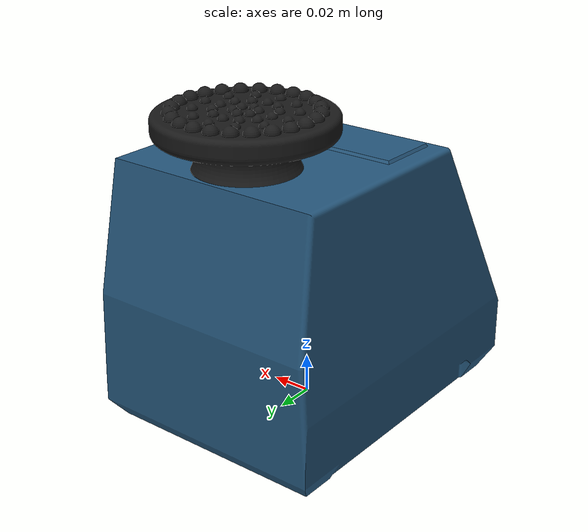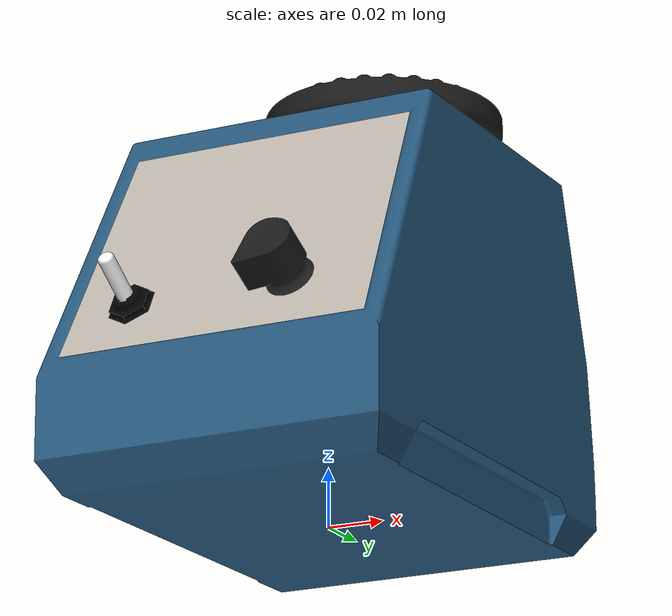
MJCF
<?xml version='1.0' encoding='utf-8'?>
<mujoco model="vortex_mixer_genie_2">
  <compiler angle="radian" autolimits="true" assetdir="../../assets" />
  <default>
    <default class="visual">
      <geom type="mesh" contype="0" conaffinity="0" density="0" group="2" />
      <mesh inertia="shell" />
    </default>
    <default class="inertia">
      <geom type="mesh" contype="0" conaffinity="0" group="5" />
      <mesh inertia="exact" />
    </default>
    <default class="collision">
      <geom type="mesh" contype="0" conaffinity="1" density="0" group="3" />
    </default>
  </default>
  <option gravity="0 0 0" timestep="0.001" />
  <asset>
    <mesh class="visual" name="body-visual-0" file="instrument/vortex_mixer_genie_2/body-visual-0.obj" />
    <material name="body-0" rgba="0.14509804 0.34117647 0.48627451 1" metallic="0.0" roughness="1.0" />
    <mesh class="visual" name="body-visual-1" file="instrument/vortex_mixer_genie_2/body-visual-1.obj" />
    <texture name="body-0" type="2d" file="instrument/vortex_mixer_genie_2/body-0.png" />
    <material name="body-1" rgba="1 1 1 1" metallic="0.0" roughness="1.0" texture="body-0" />
    <mesh class="visual" name="body-visual-2" file="instrument/vortex_mixer_genie_2/body-visual-2.obj" />
    <material name="body-2" rgba="0 0 0 1" metallic="0.0" roughness="1.0" />
    <mesh class="inertia" name="body-inertia" file="instrument/vortex_mixer_genie_2/body-inertia.obj" />
    <mesh class="collision" name="body-collision-0" file="instrument/vortex_mixer_genie_2/body-collision-0.obj" />
    <mesh class="visual" name="platform-visual-0" file="instrument/vortex_mixer_genie_2/platform-visual-0.obj" />
    <material name="platform-0" rgba="0.101961 0.101961 0.101961 1" metallic="0.0" roughness="1.0" />
    <mesh class="inertia" name="platform-inertia" file="instrument/vortex_mixer_genie_2/platform-inertia.obj" />
    <mesh class="visual" name="switch-visual-0" file="instrument/vortex_mixer_genie_2/switch-visual-0.obj" />
    <material name="switch-0" rgba="1 1 1 1" metallic="0.0" roughness="1.0" />
    <mesh class="inertia" name="switch-inertia" file="instrument/vortex_mixer_genie_2/switch-inertia.obj" />
    <mesh class="visual" name="knob-visual-0" file="instrument/vortex_mixer_genie_2/knob-visual-0.obj" />
    <material name="knob-0" rgba="0.101961 0.101961 0.101961 1" metallic="0.0" roughness="1.0" />
    <mesh class="inertia" name="knob-inertia" file="instrument/vortex_mixer_genie_2/knob-inertia.obj" />
    <mesh class="collision" name="knob-collision-0" file="instrument/vortex_mixer_genie_2/knob-collision-0.obj" />
  </asset>
  <extension>
    <plugin plugin="mjlab.passive.detent">
      <instance name="detent" />
    </plugin>
  </extension>
  <worldbody>
    <body name="body" pos="0 0 0.02904675" quat="1 0 0 0">
      <geom class="visual" mesh="body-visual-0" material="body-0" />
      <geom class="visual" mesh="body-visual-1" material="body-1" />
      <geom class="visual" mesh="body-visual-2" material="body-2" />
      <geom class="inertia" mesh="body-inertia" density="1000" />
      <geom class="collision" mesh="body-collision-0" />
      <body name="platform" pos="0.00000299 0.01518481 0.03284156" quat="1 0 0 0">
        <joint name="platform/pivot" type="hinge" pos="0.00000001 0.02874511 0.07022548" axis="0 0 1" damping="0.01" armature="0.1" />
        <frame name="platform" pos="0 -0.002 0">
          <joint name="platform/orbit" type="hinge" pos="0.00000001 0.02874511 0.07022548" axis="0 0 1" />
          <geom class="visual" mesh="platform-visual-0" material="platform-0" />
          <geom class="inertia" mesh="platform-inertia" density="1000" />
          <geom class="collision" type="cylinder" size="0.0281749 0.00734048" pos="-0.00009476 0.02883801 0.0774371" />
          <geom class="collision" type="cylinder" size="0.04139786 0.00563025" pos="-0.00000001 0.02874491 0.08994599" />
          <geom class="collision" type="sphere" size="0.0036043" pos="0.00000001 -0.00376545 0.09557489" />
          <geom class="collision" type="sphere" size="0.0036043" pos="-0.00841435 -0.00265768 0.09557489" />
          <geom class="collision" type="sphere" size="0.0036043" pos="-0.01625527 0.00059014 0.09557489" />
          <geom class="collision" type="sphere" size="0.0036043" pos="-0.02298843 0.00575667 0.09557489" />
          <geom class="collision" type="sphere" size="0.0036043" pos="-0.02815497 0.01248983 0.09557489" />
          <geom class="collision" type="sphere" size="0.0036043" pos="-0.03140278 0.02033076 0.09557489" />
          <geom class="collision" type="sphere" size="0.0036043" pos="-0.03251055 0.02874511 0.09557489" />
          <geom class="collision" type="sphere" size="0.0036043" pos="-0.03140279 0.03715946 0.09557489" />
          <geom class="collision" type="sphere" size="0.0036043" pos="-0.02815497 0.04500039 0.09557489" />
          <geom class="collision" type="sphere" size="0.0036043" pos="-0.02298843 0.05173354 0.09557489" />
          <geom class="collision" type="sphere" size="0.0036043" pos="-0.01625527 0.05690008 0.09557489" />
          <geom class="collision" type="sphere" size="0.0036043" pos="-0.00841435 0.0601479 0.09557489" />
          <geom class="collision" type="sphere" size="0.0036043" pos="0.00000001 0.06125567 0.09557489" />
          <geom class="collision" type="sphere" size="0.0036043" pos="0.00841436 0.0601479 0.09557489" />
          <geom class="collision" type="sphere" size="0.0036043" pos="0.01625529 0.05690008 0.09557489" />
          <geom class="collision" type="sphere" size="0.0036043" pos="0.02298844 0.05173354 0.09557489" />
          <geom class="collision" type="sphere" size="0.0036043" pos="0.02815498 0.04500039 0.09557489" />
          <geom class="collision" type="sphere" size="0.0036043" pos="0.03140279 0.03715946 0.09557489" />
          <geom class="collision" type="sphere" size="0.0036043" pos="0.03251056 0.02874511 0.09557489" />
          <geom class="collision" type="sphere" size="0.0036043" pos="0.03140279 0.02033076 0.09557489" />
          <geom class="collision" type="sphere" size="0.0036043" pos="0.02815498 0.01248983 0.09557489" />
          <geom class="collision" type="sphere" size="0.0036043" pos="0.02298844 0.00575667 0.09557489" />
          <geom class="collision" type="sphere" size="0.0036043" pos="0.01625529 0.00059014 0.09557489" />
          <geom class="collision" type="sphere" size="0.0036043" pos="0.00841436 -0.00265768 0.09557489" />
          <geom class="collision" type="sphere" size="0.00241874" pos="0.00000001 0.00535039 0.09557321" />
          <geom class="collision" type="sphere" size="0.00241874" pos="-0.01169735 0.00848468 0.09557321" />
          <geom class="collision" type="sphere" size="0.00241874" pos="-0.02026042 0.01704775 0.09557321" />
          <geom class="collision" type="sphere" size="0.00241874" pos="-0.02339472 0.02874511 0.09557321" />
          <geom class="collision" type="sphere" size="0.00241874" pos="-0.02026042 0.04044247 0.09557321" />
          <geom class="collision" type="sphere" size="0.00241874" pos="-0.01169735 0.04900553 0.09557321" />
          <geom class="collision" type="sphere" size="0.00241874" pos="0.00000001 0.05213983 0.09557321" />
          <geom class="collision" type="sphere" size="0.00241874" pos="0.01169736 0.04900553 0.09557321" />
          <geom class="collision" type="sphere" size="0.00241874" pos="0.02026043 0.04044247 0.09557321" />
          <geom class="collision" type="sphere" size="0.00241874" pos="0.02339472 0.02874511 0.09557321" />
          <geom class="collision" type="sphere" size="0.00241874" pos="0.02026043 0.01704775 0.09557321" />
          <geom class="collision" type="sphere" size="0.00241874" pos="0.01169736 0.00848468 0.09557321" />
          <geom class="collision" type="sphere" size="0.00241874" pos="0.00000001 0.01416659 0.09557321" />
          <geom class="collision" type="sphere" size="0.00241874" pos="-0.00728925 0.01611974 0.09557321" />
          <geom class="collision" type="sphere" size="0.00241874" pos="-0.01262536 0.02145585 0.09557321" />
          <geom class="collision" type="sphere" size="0.00241874" pos="-0.01457851 0.02874511 0.09557321" />
          <geom class="collision" type="sphere" size="0.00241874" pos="-0.01262536 0.03603436 0.09557321" />
          <geom class="collision" type="sphere" size="0.00241874" pos="-0.00728925 0.04137047 0.09557321" />
          <geom class="collision" type="sphere" size="0.00241874" pos="0.00000001 0.04332362 0.09557321" />
          <geom class="collision" type="sphere" size="0.00241874" pos="0.00728926 0.04137047 0.09557321" />
          <geom class="collision" type="sphere" size="0.00241874" pos="0.01262537 0.03603436 0.09557321" />
          <geom class="collision" type="sphere" size="0.00241874" pos="0.01457852 0.02874511 0.09557321" />
          <geom class="collision" type="sphere" size="0.00241874" pos="0.01262537 0.02145585 0.09557321" />
          <geom class="collision" type="sphere" size="0.00241874" pos="0.00728926 0.01611974 0.09557321" />
          <geom class="collision" type="sphere" size="0.00241874" pos="0.00000001 0.02319411 0.09557321" />
          <geom class="collision" type="sphere" size="0.00241874" pos="-0.0048073 0.02596961 0.09557321" />
          <geom class="collision" type="sphere" size="0.00241874" pos="-0.0048073 0.03152061 0.09557321" />
          <geom class="collision" type="sphere" size="0.00241874" pos="0.00000001 0.03429611 0.09557321" />
          <geom class="collision" type="sphere" size="0.00241874" pos="0.00480731 0.03152061 0.09557321" />
          <geom class="collision" type="sphere" size="0.00241874" pos="0.00480731 0.02596961 0.09557321" />
          <site name="platform-function" group="3" pos="-0 0.02876459 0.09573353" size="0.005 0.005 0.005" />
        </frame>
      </body>
      <body name="switch" pos="-0.05384409 -0.02809945 0.00935715" quat="-0 0 0.85315633 -0.52165533">
        <joint name="switch" type="hinge" pos="-0.02193041 -0.04410421 0.03201248" axis="1 0 0" range="-0.4 0.4" springdamper="0.05 1" armature="0.0001" user="3" />
        <plugin instance="detent" />
        <geom class="visual" mesh="switch-visual-0" material="switch-0" />
        <geom class="inertia" mesh="switch-inertia" density="1000" />
        <geom class="collision" type="cylinder" size="0.002632 0.00943067" pos="-0.02070718 -0.04991252 0.03503589" quat="0.85512933 0.51841433 -0.00064119 0" />
        <site name="switch-function" group="3" pos="-0.0207447 -0.05650076 0.03829843" quat="0.97257445 -0.23259179 -0 -0" size="0.005 0.005 0.005" />
      </body>
      <body name="knob" pos="0.01693642 -0.02179721 0.02349023" quat="0.68038146 -0.00000007 0.65002891 -0.33844273">
        <joint name="knob" type="hinge" pos="0.01494261 -0.03978327 0.03040753" axis="-0.00000022 0.88697783 -0.461812" range="0 4.6" springdamper="0.05 1" armature="0.0001" user="11" />
        <plugin instance="detent" />
        <geom class="visual" mesh="knob-visual-0" material="knob-0" />
        <geom class="inertia" mesh="knob-inertia" density="1000" />
        <geom class="collision" mesh="knob-collision-0" />
        <site name="knob-function" group="3" pos="0.01475791 -0.05143099 0.03734695" quat="0.79473194 0.48229501 0.19113432 -0.3150561" size="0.05 0.05 0.05" />
      </body>
    </body>
  </worldbody>
  <equality>
    <joint name="platform" joint1="platform/orbit" joint2="platform/pivot" polycoef="0 -1" />
  </equality>
  <actuator>
    <velocity name="platform/pivot" joint="platform/pivot" kv="1" ctrlrange="0 400" />
  </actuator>
</mujoco>
